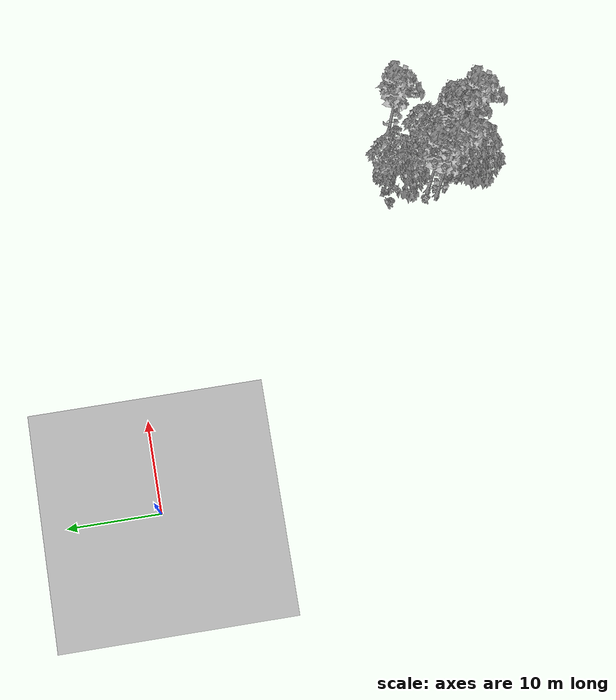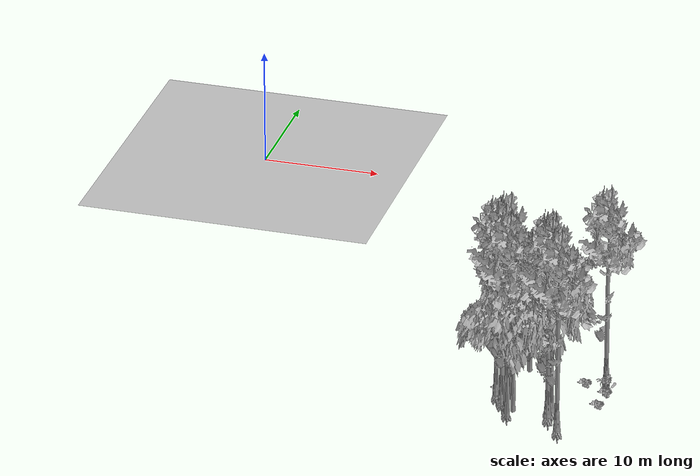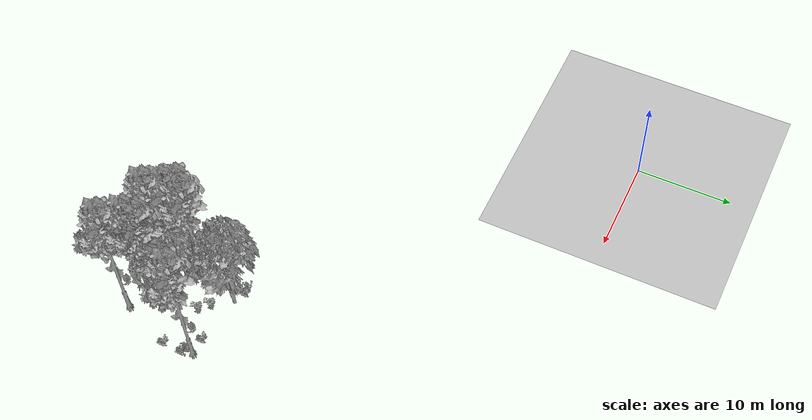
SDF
<sdf version="1.7">
 <world name="default">
  <model name="ground_plane">
   <static>1</static>
   <link name="link">
    <collision name="collision">
     <pose>-50 0 0 0 -0 0</pose>
     <geometry><plane><normal>0 0 1</normal><size>80 80</size></plane></geometry>
     <surface><contact><ode><min_depth>0.01</min_depth><max_vel>0</max_vel></ode></contact></surface>
    </collision>
    <visual name="grass">
     <cast_shadows>0</cast_shadows>
     <geometry>
      <mesh>
       <scale>0.46714285714285714 0.46714285714285714 0.1</scale>
       <uri>file://grass_plane/meshes/grass_plane.dae</uri>
      </mesh>
     </geometry>
    </visual>
   </link>
  </model>
  <model name="Tree 18">
   <static>1</static>
   <pose>30.648808258607744 -36.069620693517344 0 1.57079 -0 0</pose>
   <link name="link">
    <collision name="collision">
     <geometry><mesh><scale>3.5 5 3.5</scale><uri>model://tree_9/meshes/tree_9.obj</uri></mesh></geometry>
    </collision>
    <visual name="visual">
     <geometry><mesh><scale>3.5 5 3.5</scale><uri>model://tree_9/meshes/tree_9.obj</uri></mesh></geometry>
    </visual>
   </link>
  </model>
  <model name="Tree 52">
   <static>1</static>
   <pose>34.77850753655383 -37.45550092546839 0 1.57079 -0 0</pose>
   <link name="link">
    <collision name="collision">
     <geometry><mesh><scale>3.5 5 3.5</scale><uri>model://tree_9/meshes/tree_9.obj</uri></mesh></geometry>
    </collision>
    <visual name="visual">
     <geometry><mesh><scale>3.5 5 3.5</scale><uri>model://tree_9/meshes/tree_9.obj</uri></mesh></geometry>
    </visual>
   </link>
  </model>
  <model name="Tree 63">
   <static>1</static>
   <pose>31.758137659700722 -37.05685810820839 0 1.57079 -0 0</pose>
   <link name="link">
    <collision name="collision">
     <geometry><mesh><scale>3.5 5 3.5</scale><uri>model://tree_2/meshes/tree_2.obj</uri></mesh></geometry>
    </collision>
    <visual name="visual">
     <geometry><mesh><scale>3.5 5 3.5</scale><uri>model://tree_2/meshes/tree_2.obj</uri></mesh></geometry>
    </visual>
   </link>
  </model>
  <model name="Tree 80">
   <static>1</static>
   <pose>37.918988460208254 -31.037410977406772 0 1.57079 -0 0</pose>
   <link name="link">
    <collision name="collision">
     <geometry><mesh><scale>3.5 5 3.5</scale><uri>model://tree_9/meshes/tree_9.obj</uri></mesh></geometry>
    </collision>
    <visual name="visual">
     <geometry><mesh><scale>3.5 5 3.5</scale><uri>model://tree_9/meshes/tree_9.obj</uri></mesh></geometry>
    </visual>
   </link>
  </model>
  <model name="Tree 121">
   <static>1</static>
   <pose>31.438634725846114 -37.58821931029392 0 1.57079 -0 0</pose>
   <link name="link">
    <collision name="collision">
     <geometry><mesh><scale>3.5 5 3.5</scale><uri>model://tree_9/meshes/tree_9.obj</uri></mesh></geometry>
    </collision>
    <visual name="visual">
     <geometry><mesh><scale>3.5 5 3.5</scale><uri>model://tree_9/meshes/tree_9.obj</uri></mesh></geometry>
    </visual>
   </link>
  </model>
  <model name="Tree 152">
   <static>1</static>
   <pose>30.567424388800802 -34.1331245406132 0 1.57079 -0 0</pose>
   <link name="link">
    <collision name="collision">
     <geometry><mesh><scale>3.5 5 3.5</scale><uri>model://tree_9/meshes/tree_9.obj</uri></mesh></geometry>
    </collision>
    <visual name="visual">
     <geometry><mesh><scale>3.5 5 3.5</scale><uri>model://tree_9/meshes/tree_9.obj</uri></mesh></geometry>
    </visual>
   </link>
  </model>
  <model name="Tree 156">
   <static>1</static>
   <pose>29.924054518892348 -35.02818765723439 0 1.57079 -0 0</pose>
   <link name="link">
    <collision name="collision">
     <geometry><mesh><scale>3.5 5 3.5</scale><uri>model://tree_9/meshes/tree_9.obj</uri></mesh></geometry>
    </collision>
    <visual name="visual">
     <geometry><mesh><scale>3.5 5 3.5</scale><uri>model://tree_9/meshes/tree_9.obj</uri></mesh></geometry>
    </visual>
   </link>
  </model>
  <model name="Tree 164">
   <static>1</static>
   <pose>34.13043256237957 -34.62393594558915 0 1.57079 -0 0</pose>
   <link name="link">
    <collision name="collision">
     <geometry><mesh><scale>3.5 5 3.5</scale><uri>model://tree_2/meshes/tree_2.obj</uri></mesh></geometry>
    </collision>
    <visual name="visual">
     <geometry><mesh><scale>3.5 5 3.5</scale><uri>model://tree_2/meshes/tree_2.obj</uri></mesh></geometry>
    </visual>
   </link>
  </model>
  <model name="Tree 291">
   <static>1</static>
   <pose>31.59277887640222 -38.23992760683302 0 1.57079 -0 0</pose>
   <link name="link">
    <collision name="collision">
     <geometry><mesh><scale>3.5 5 3.5</scale><uri>model://tree_2/meshes/tree_2.obj</uri></mesh></geometry>
    </collision>
    <visual name="visual">
     <geometry><mesh><scale>3.5 5 3.5</scale><uri>model://tree_2/meshes/tree_2.obj</uri></mesh></geometry>
    </visual>
   </link>
  </model>
  <model name="Tree 414">
   <static>1</static>
   <pose>31.31231758246956 -30.23689141305301 0 1.57079 -0 0</pose>
   <link name="link">
    <collision name="collision">
     <geometry><mesh><scale>3.5 5 3.5</scale><uri>model://tree_2/meshes/tree_2.obj</uri></mesh></geometry>
    </collision>
    <visual name="visual">
     <geometry><mesh><scale>3.5 5 3.5</scale><uri>model://tree_2/meshes/tree_2.obj</uri></mesh></geometry>
    </visual>
   </link>
  </model>
  <model name="Tree 449">
   <static>1</static>
   <pose>34.80603356613051 -36.44463920264197 0 1.57079 -0 0</pose>
   <link name="link">
    <collision name="collision">
     <geometry><mesh><scale>3.5 5 3.5</scale><uri>model://tree_9/meshes/tree_9.obj</uri></mesh></geometry>
    </collision>
    <visual name="visual">
     <geometry><mesh><scale>3.5 5 3.5</scale><uri>model://tree_9/meshes/tree_9.obj</uri></mesh></geometry>
    </visual>
   </link>
  </model>
  <model name="Tree 508">
   <static>1</static>
   <pose>34.511031904866556 -36.31663541969978 0 1.57079 -0 0</pose>
   <link name="link">
    <collision name="collision">
     <geometry><mesh><scale>3.5 5 3.5</scale><uri>model://tree_9/meshes/tree_9.obj</uri></mesh></geometry>
    </collision>
    <visual name="visual">
     <geometry><mesh><scale>3.5 5 3.5</scale><uri>model://tree_9/meshes/tree_9.obj</uri></mesh></geometry>
    </visual>
   </link>
  </model>
  <model name="Tree 632">
   <static>1</static>
   <pose>36.031359665354444 -39.31509569442119 0 1.57079 -0 0</pose>
   <link name="link">
    <collision name="collision">
     <geometry><mesh><scale>3.5 5 3.5</scale><uri>model://tree_9/meshes/tree_9.obj</uri></mesh></geometry>
    </collision>
    <visual name="visual">
     <geometry><mesh><scale>3.5 5 3.5</scale><uri>model://tree_9/meshes/tree_9.obj</uri></mesh></geometry>
    </visual>
   </link>
  </model>
  <model name="Bush 28">
   <static>1</static>
   <pose>30.644307820935182 -35.133298964835205 0 1.57079 -0 0</pose>
   <link name="link">
    <collision name="collision">
     <geometry><mesh><scale>2 2 2</scale><uri>model://bush_2/meshes/bush_2.obj</uri></mesh></geometry>
     <surface><contact><collide_without_contact>false</collide_without_contact></contact></surface>
    </collision>
    <visual name="visual">
     <geometry><mesh><scale>2 2 2</scale><uri>model://bush_2/meshes/bush_2.obj</uri></mesh></geometry>
    </visual>
   </link>
  </model>
  <model name="Bush 201">
   <static>1</static>
   <pose>38.003044643088174 -34.26899397536186 0 1.57079 -0 0</pose>
   <link name="link">
    <collision name="collision">
     <geometry><mesh><scale>2 2 2</scale><uri>model://bush_2/meshes/bush_2.obj</uri></mesh></geometry>
     <surface><contact><collide_without_contact>false</collide_without_contact></contact></surface>
    </collision>
    <visual name="visual">
     <geometry><mesh><scale>2 2 2</scale><uri>model://bush_2/meshes/bush_2.obj</uri></mesh></geometry>
    </visual>
   </link>
  </model>
  <model name="Bush 216">
   <static>1</static>
   <pose>38.02895163251556 -31.637453068526355 0 1.57079 -0 0</pose>
   <link name="link">
    <collision name="collision">
     <geometry><mesh><scale>2 2 2</scale><uri>model://bush_4/meshes/bush_4.obj</uri></mesh></geometry>
     <surface><contact><collide_without_contact>false</collide_without_contact></contact></surface>
    </collision>
    <visual name="visual">
     <geometry><mesh><scale>2 2 2</scale><uri>model://bush_4/meshes/bush_4.obj</uri></mesh></geometry>
    </visual>
   </link>
  </model>
  <model name="Bush 224">
   <static>1</static>
   <pose>36.17787731860187 -31.076453807698883 0 1.57079 -0 0</pose>
   <link name="link">
    <collision name="collision">
     <geometry><mesh><scale>2 2 2</scale><uri>model://bush_2/meshes/bush_2.obj</uri></mesh></geometry>
     <surface><contact><collide_without_contact>false</collide_without_contact></contact></surface>
    </collision>
    <visual name="visual">
     <geometry><mesh><scale>2 2 2</scale><uri>model://bush_2/meshes/bush_2.obj</uri></mesh></geometry>
    </visual>
   </link>
  </model>
  <model name="Bush 278">
   <static>1</static>
   <pose>29.769839225792552 -29.682933918657035 0 1.57079 -0 0</pose>
   <link name="link">
    <collision name="collision">
     <geometry><mesh><scale>2 2 2</scale><uri>model://bush_4/meshes/bush_4.obj</uri></mesh></geometry>
     <surface><contact><collide_without_contact>false</collide_without_contact></contact></surface>
    </collision>
    <visual name="visual">
     <geometry><mesh><scale>2 2 2</scale><uri>model://bush_4/meshes/bush_4.obj</uri></mesh></geometry>
    </visual>
   </link>
  </model>
  <model name="Bush 384">
   <static>1</static>
   <pose>38.12214652767348 -32.16052929266897 0 1.57079 -0 0</pose>
   <link name="link">
    <collision name="collision">
     <geometry><mesh><scale>2 2 2</scale><uri>model://bush_2/meshes/bush_2.obj</uri></mesh></geometry>
     <surface><contact><collide_without_contact>false</collide_without_contact></contact></surface>
    </collision>
    <visual name="visual">
     <geometry><mesh><scale>2 2 2</scale><uri>model://bush_2/meshes/bush_2.obj</uri></mesh></geometry>
    </visual>
   </link>
  </model>
  <model name="Bush 487">
   <static>1</static>
   <pose>33.02549025819003 -31.701977337738157 0 1.57079 -0 0</pose>
   <link name="link">
    <collision name="collision">
     <geometry><mesh><scale>2 2 2</scale><uri>model://bush_5/meshes/bush_5.obj</uri></mesh></geometry>
     <surface><contact><collide_without_contact>false</collide_without_contact></contact></surface>
    </collision>
    <visual name="visual">
     <geometry><mesh><scale>2 2 2</scale><uri>model://bush_5/meshes/bush_5.obj</uri></mesh></geometry>
    </visual>
   </link>
  </model>
  <model name="Bush 541">
   <static>1</static>
   <pose>33.92140914990132 -32.61798363550259 0 1.57079 -0 0</pose>
   <link name="link">
    <collision name="collision">
     <geometry><mesh><scale>2 2 2</scale><uri>model://bush_5/meshes/bush_5.obj</uri></mesh></geometry>
     <surface><contact><collide_without_contact>false</collide_without_contact></contact></surface>
    </collision>
    <visual name="visual">
     <geometry><mesh><scale>2 2 2</scale><uri>model://bush_5/meshes/bush_5.obj</uri></mesh></geometry>
    </visual>
   </link>
  </model>
  <model name="Bush 542">
   <static>1</static>
   <pose>29.998807369721803 -29.875274464287607 0 1.57079 -0 0</pose>
   <link name="link">
    <collision name="collision">
     <geometry><mesh><scale>2 2 2</scale><uri>model://bush_2/meshes/bush_2.obj</uri></mesh></geometry>
     <surface><contact><collide_without_contact>false</collide_without_contact></contact></surface>
    </collision>
    <visual name="visual">
     <geometry><mesh><scale>2 2 2</scale><uri>model://bush_2/meshes/bush_2.obj</uri></mesh></geometry>
    </visual>
   </link>
  </model>
  <model name="Bush 608">
   <static>1</static>
   <pose>29.753025820521557 -33.777613590389066 0 1.57079 -0 0</pose>
   <link name="link">
    <collision name="collision">
     <geometry><mesh><scale>2 2 2</scale><uri>model://bush_2/meshes/bush_2.obj</uri></mesh></geometry>
     <surface><contact><collide_without_contact>false</collide_without_contact></contact></surface>
    </collision>
    <visual name="visual">
     <geometry><mesh><scale>2 2 2</scale><uri>model://bush_2/meshes/bush_2.obj</uri></mesh></geometry>
    </visual>
   </link>
  </model>
 </world>
</sdf>
